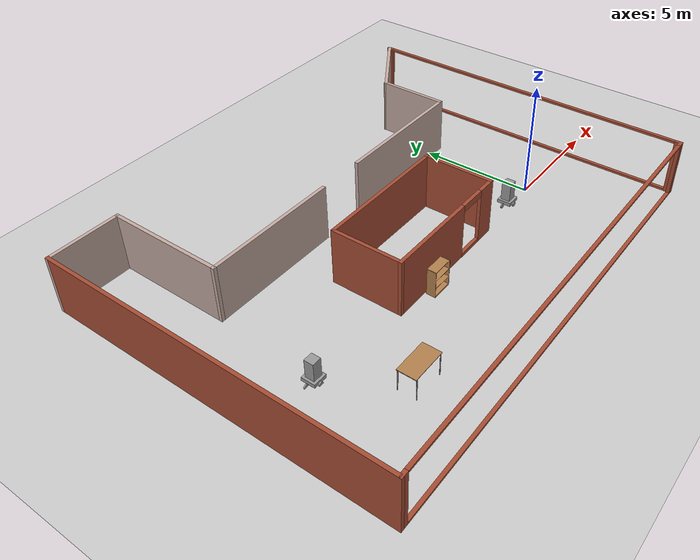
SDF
<sdf version="1.6">
 <world name="default">
  <light name="sun" type="directional">
   <pose>0 0 10 0 -0 0</pose>
   <diffuse>0.8 0.8 0.8 1</diffuse>
   <specular>0.2 0.2 0.2 1</specular>
   <attenuation>
    <range>1000</range>
    <constant>0.9</constant>
    <linear>0.01</linear>
    <quadratic>0.001</quadratic>
   </attenuation>
   <direction>-0.5 0.1 -0.9</direction>
  </light>
  <model name="ground_plane">
   <static>1</static>
   <link name="link">
    <collision name="collision">
     <geometry><plane><normal>0 0 1</normal><size>100 100</size></plane></geometry>
     <surface>
      <contact><collide_bitmask>65535</collide_bitmask></contact>
      <friction><ode><mu>100</mu><mu2>50</mu2></ode></friction>
     </surface>
    </collision>
    <visual name="visual">
     <cast_shadows>0</cast_shadows>
     <geometry><plane><normal>0 0 1</normal><size>100 100</size></plane></geometry>
     <material>
      <script><uri>file://media/materials/scripts/gazebo.material</uri><name>Gazebo/Grey</name></script>
     </material>
    </visual>
   </link>
  </model>
  <gravity>0 0 -9.8</gravity>
  <magnetic_field>6e-06 2.3e-05 -4.2e-05</magnetic_field>
  <atmosphere type="adiabatic"/>
  <physics name="default_physics" default="0" type="ode">
   <max_step_size>0.001</max_step_size>
   <real_time_factor>1</real_time_factor>
   <real_time_update_rate>1000</real_time_update_rate>
  </physics>
  <scene><ambient>0.4 0.4 0.4 1</ambient><background>0.7 0.7 0.7 1</background><shadows>1</shadows></scene>
  <spherical_coordinates>
   <surface_model>EARTH_WGS84</surface_model>
   <latitude_deg>0</latitude_deg>
   <longitude_deg>0</longitude_deg>
   <elevation>0</elevation>
   <heading_deg>0</heading_deg>
  </spherical_coordinates>
  <model name="CoffeeBot">
   <link name="link_0">
    <pose>0.405763 -0.037091 0.1 0 -0 0</pose>
    <inertial>
     <mass>1</mass>
     <inertia>
      <ixx>0.166667</ixx>
      <ixy>0</ixy>
      <ixz>0</ixz>
      <iyy>0.166667</iyy>
      <iyz>0</iyz>
      <izz>0.166667</izz>
     </inertia>
    </inertial>
    <visual name="visual">
     <geometry><box><size>0.6 0.6 0.16</size></box></geometry>
     <material>
      <lighting>1</lighting>
      <script><uri>file://media/materials/scripts/gazebo.material</uri><name>Gazebo/Grey</name></script>
      <shader type="pixel"><normal_map>__default__</normal_map></shader>
      <ambient>0.3 0.3 0.3 1</ambient>
      <diffuse>0.7 0.7 0.7 1</diffuse>
      <specular>0.01 0.01 0.01 1</specular>
      <emissive>0 0 0 1</emissive>
     </material>
    </visual>
    <collision name="collision">
     <geometry><box><size>0.6 0.6 0.16</size></box></geometry>
     <surface>
      <friction>
       <ode><mu>1</mu><mu2>1</mu2><fdir1>0 0 0</fdir1><slip1>0</slip1><slip2>0</slip2></ode>
       <torsional>
        <coefficient>1</coefficient>
        <patch_radius>0</patch_radius>
        <surface_radius>0</surface_radius>
        <use_patch_radius>1</use_patch_radius>
        <ode><slip>0</slip></ode>
       </torsional>
      </friction>
      <bounce><restitution_coefficient>0</restitution_coefficient><threshold>1e+06</threshold></bounce>
      <contact>
       <collide_without_contact>0</collide_without_contact>
       <collide_without_contact_bitmask>1</collide_without_contact_bitmask>
       <collide_bitmask>1</collide_bitmask>
       <ode>
        <soft_cfm>0</soft_cfm>
        <soft_erp>0.2</soft_erp>
        <kp>1e+13</kp>
        <kd>1</kd>
        <max_vel>0.01</max_vel>
        <min_depth>0</min_depth>
       </ode>
       <bullet>
        <split_impulse>1</split_impulse>
        <split_impulse_penetration_threshold>-0.01</split_impulse_penetration_threshold>
        <soft_cfm>0</soft_cfm>
        <soft_erp>0.2</soft_erp>
        <kp>1e+13</kp>
        <kd>1</kd>
       </bullet>
      </contact>
     </surface>
    </collision>
   </link>
   <link name="link_2">
    <pose>0.385763 -0.362104 0 1.5707 -0 0</pose>
    <inertial>
     <mass>1</mass>
     <inertia><ixx>0.145833</ixx><ixy>0</ixy><ixz>0</ixz><iyy>0.145833</iyy><iyz>0</iyz><izz>0.125</izz></inertia>
    </inertial>
    <visual name="visual">
     <geometry><cylinder><radius>0.1</radius><length>0.05</length></cylinder></geometry>
     <material>
      <lighting>1</lighting>
      <script><uri>file://media/materials/scripts/gazebo.material</uri><name>Gazebo/Grey</name></script>
      <shader type="pixel"><normal_map>__default__</normal_map></shader>
      <ambient>0.3 0.3 0.3 1</ambient>
      <diffuse>0.7 0.7 0.7 1</diffuse>
      <specular>0.01 0.01 0.01 1</specular>
      <emissive>0 0 0 1</emissive>
     </material>
    </visual>
    <collision name="collision">
     <geometry><cylinder><radius>0.1</radius><length>0.05</length></cylinder></geometry>
     <surface>
      <friction>
       <ode><mu>1</mu><mu2>1</mu2><fdir1>0 0 0</fdir1><slip1>0</slip1><slip2>0</slip2></ode>
       <torsional>
        <coefficient>1</coefficient>
        <patch_radius>0</patch_radius>
        <surface_radius>0</surface_radius>
        <use_patch_radius>1</use_patch_radius>
        <ode><slip>0</slip></ode>
       </torsional>
      </friction>
      <bounce><restitution_coefficient>0</restitution_coefficient><threshold>1e+06</threshold></bounce>
      <contact>
       <collide_without_contact>0</collide_without_contact>
       <collide_without_contact_bitmask>1</collide_without_contact_bitmask>
       <collide_bitmask>1</collide_bitmask>
       <ode>
        <soft_cfm>0</soft_cfm>
        <soft_erp>0.2</soft_erp>
        <kp>1e+13</kp>
        <kd>1</kd>
        <max_vel>0.01</max_vel>
        <min_depth>0</min_depth>
       </ode>
       <bullet>
        <split_impulse>1</split_impulse>
        <split_impulse_penetration_threshold>-0.01</split_impulse_penetration_threshold>
        <soft_cfm>0</soft_cfm>
        <soft_erp>0.2</soft_erp>
        <kp>1e+13</kp>
        <kd>1</kd>
       </bullet>
      </contact>
     </surface>
    </collision>
   </link>
   <link name="link_2_clone">
    <pose>0.405763 0.287919 0 1.5707 -0 0</pose>
    <inertial>
     <mass>1</mass>
     <inertia><ixx>0.145833</ixx><ixy>0</ixy><ixz>0</ixz><iyy>0.145833</iyy><iyz>0</iyz><izz>0.125</izz></inertia>
    </inertial>
    <visual name="visual">
     <geometry><cylinder><radius>0.1</radius><length>0.05</length></cylinder></geometry>
     <material>
      <lighting>1</lighting>
      <script><uri>file://media/materials/scripts/gazebo.material</uri><name>Gazebo/Grey</name></script>
      <shader type="pixel"><normal_map>__default__</normal_map></shader>
      <ambient>0.3 0.3 0.3 1</ambient>
      <diffuse>0.7 0.7 0.7 1</diffuse>
      <specular>0.01 0.01 0.01 1</specular>
      <emissive>0 0 0 1</emissive>
     </material>
    </visual>
    <collision name="collision">
     <geometry><cylinder><radius>0.1</radius><length>0.05</length></cylinder></geometry>
     <surface>
      <friction>
       <ode><mu>1</mu><mu2>1</mu2><fdir1>0 0 0</fdir1><slip1>0</slip1><slip2>0</slip2></ode>
       <torsional>
        <coefficient>1</coefficient>
        <patch_radius>0</patch_radius>
        <surface_radius>0</surface_radius>
        <use_patch_radius>1</use_patch_radius>
        <ode><slip>0</slip></ode>
       </torsional>
      </friction>
      <bounce><restitution_coefficient>0</restitution_coefficient><threshold>1e+06</threshold></bounce>
      <contact>
       <collide_without_contact>0</collide_without_contact>
       <collide_without_contact_bitmask>1</collide_without_contact_bitmask>
       <collide_bitmask>1</collide_bitmask>
       <ode>
        <soft_cfm>0</soft_cfm>
        <soft_erp>0.2</soft_erp>
        <kp>1e+13</kp>
        <kd>1</kd>
        <max_vel>0.01</max_vel>
        <min_depth>0</min_depth>
       </ode>
       <bullet>
        <split_impulse>1</split_impulse>
        <split_impulse_penetration_threshold>-0.01</split_impulse_penetration_threshold>
        <soft_cfm>0</soft_cfm>
        <soft_erp>0.2</soft_erp>
        <kp>1e+13</kp>
        <kd>1</kd>
       </bullet>
      </contact>
     </surface>
    </collision>
   </link>
   <link name="link_2_clone_0">
    <pose>0.005759 -0.037091 0 1.5707 -0 0</pose>
    <inertial>
     <mass>1</mass>
     <inertia><ixx>0.145833</ixx><ixy>0</ixy><ixz>0</ixz><iyy>0.145833</iyy><iyz>0</iyz><izz>0.125</izz></inertia>
    </inertial>
    <visual name="visual">
     <geometry><cylinder><radius>0.1</radius><length>0.05</length></cylinder></geometry>
     <material>
      <lighting>1</lighting>
      <script><uri>file://media/materials/scripts/gazebo.material</uri><name>Gazebo/Grey</name></script>
      <shader type="pixel"><normal_map>__default__</normal_map></shader>
      <ambient>0.3 0.3 0.3 1</ambient>
      <diffuse>0.7 0.7 0.7 1</diffuse>
      <specular>0.01 0.01 0.01 1</specular>
      <emissive>0 0 0 1</emissive>
     </material>
    </visual>
    <collision name="collision">
     <geometry><cylinder><radius>0.1</radius><length>0.05</length></cylinder></geometry>
     <surface>
      <friction>
       <ode><mu>1</mu><mu2>1</mu2><fdir1>0 0 0</fdir1><slip1>0</slip1><slip2>0</slip2></ode>
       <torsional>
        <coefficient>1</coefficient>
        <patch_radius>0</patch_radius>
        <surface_radius>0</surface_radius>
        <use_patch_radius>1</use_patch_radius>
        <ode><slip>0</slip></ode>
       </torsional>
      </friction>
      <bounce><restitution_coefficient>0</restitution_coefficient><threshold>1e+06</threshold></bounce>
      <contact>
       <collide_without_contact>0</collide_without_contact>
       <collide_without_contact_bitmask>1</collide_without_contact_bitmask>
       <collide_bitmask>1</collide_bitmask>
       <ode>
        <soft_cfm>0</soft_cfm>
        <soft_erp>0.2</soft_erp>
        <kp>1e+13</kp>
        <kd>1</kd>
        <max_vel>0.01</max_vel>
        <min_depth>0</min_depth>
       </ode>
       <bullet>
        <split_impulse>1</split_impulse>
        <split_impulse_penetration_threshold>-0.01</split_impulse_penetration_threshold>
        <soft_cfm>0</soft_cfm>
        <soft_erp>0.2</soft_erp>
        <kp>1e+13</kp>
        <kd>1</kd>
       </bullet>
      </contact>
     </surface>
    </collision>
   </link>
   <link name="link_3">
    <pose>0.405763 -0.037091 0.58 0 -0 0</pose>
    <inertial>
     <mass>1</mass>
     <inertia>
      <ixx>0.166667</ixx>
      <ixy>0</ixy>
      <ixz>0</ixz>
      <iyy>0.166667</iyy>
      <iyz>0</iyz>
      <izz>0.166667</izz>
     </inertia>
    </inertial>
    <visual name="visual">
     <geometry><box><size>0.4 0.4 0.8</size></box></geometry>
     <material>
      <lighting>1</lighting>
      <script><uri>file://media/materials/scripts/gazebo.material</uri><name>Gazebo/Grey</name></script>
      <shader type="pixel"><normal_map>__default__</normal_map></shader>
      <ambient>0.3 0.3 0.3 1</ambient>
      <diffuse>0.7 0.7 0.7 1</diffuse>
      <specular>0.01 0.01 0.01 1</specular>
      <emissive>0 0 0 1</emissive>
     </material>
    </visual>
    <collision name="collision">
     <geometry><box><size>0.4 0.4 0.8</size></box></geometry>
     <surface>
      <friction>
       <ode><mu>1</mu><mu2>1</mu2><fdir1>0 0 0</fdir1><slip1>0</slip1><slip2>0</slip2></ode>
       <torsional>
        <coefficient>1</coefficient>
        <patch_radius>0</patch_radius>
        <surface_radius>0</surface_radius>
        <use_patch_radius>1</use_patch_radius>
        <ode><slip>0</slip></ode>
       </torsional>
      </friction>
      <bounce><restitution_coefficient>0</restitution_coefficient><threshold>1e+06</threshold></bounce>
      <contact>
       <collide_without_contact>0</collide_without_contact>
       <collide_without_contact_bitmask>1</collide_without_contact_bitmask>
       <collide_bitmask>1</collide_bitmask>
       <ode>
        <soft_cfm>0</soft_cfm>
        <soft_erp>0.2</soft_erp>
        <kp>1e+13</kp>
        <kd>1</kd>
        <max_vel>0.01</max_vel>
        <min_depth>0</min_depth>
       </ode>
       <bullet>
        <split_impulse>1</split_impulse>
        <split_impulse_penetration_threshold>-0.01</split_impulse_penetration_threshold>
        <soft_cfm>0</soft_cfm>
        <soft_erp>0.2</soft_erp>
        <kp>1e+13</kp>
        <kd>1</kd>
       </bullet>
      </contact>
     </surface>
    </collision>
   </link>
   <joint name="link_0_JOINT_0" type="fixed">
    <parent>link_0</parent>
    <child>link_3</child>
    <physics>
     <ode><limit><cfm>0</cfm><erp>0.2</erp></limit><suspension><cfm>0</cfm><erp>0.2</erp></suspension></ode>
    </physics>
   </joint>
   <joint name="link_0_JOINT_1" type="revolute">
    <parent>link_0</parent>
    <child>link_2_clone</child>
    <axis>
     <xyz>0 0 1</xyz>
     <use_parent_model_frame>0</use_parent_model_frame>
     <limit>
      <lower>-1.79769e+308</lower>
      <upper>1.79769e+308</upper>
      <effort>-1</effort>
      <velocity>-1</velocity>
     </limit>
     <dynamics>
      <spring_reference>0</spring_reference>
      <spring_stiffness>0</spring_stiffness>
      <damping>0</damping>
     </dynamics>
    </axis>
    <physics>
     <ode><limit><cfm>0</cfm><erp>0.2</erp></limit><suspension><cfm>0</cfm><erp>0.2</erp></suspension></ode>
    </physics>
   </joint>
   <joint name="link_0_JOINT_2" type="revolute">
    <parent>link_0</parent>
    <child>link_2</child>
    <axis>
     <xyz>0 0 1</xyz>
     <use_parent_model_frame>0</use_parent_model_frame>
     <limit>
      <lower>-1.79769e+308</lower>
      <upper>1.79769e+308</upper>
      <effort>-1</effort>
      <velocity>-1</velocity>
     </limit>
     <dynamics>
      <spring_reference>0</spring_reference>
      <spring_stiffness>0</spring_stiffness>
      <damping>0</damping>
     </dynamics>
    </axis>
    <physics>
     <ode><limit><cfm>0</cfm><erp>0.2</erp></limit><suspension><cfm>0</cfm><erp>0.2</erp></suspension></ode>
    </physics>
   </joint>
   <joint name="link_0_JOINT_3" type="revolute">
    <parent>link_0</parent>
    <child>link_2_clone_0</child>
    <axis>
     <xyz>0 0 1</xyz>
     <use_parent_model_frame>0</use_parent_model_frame>
     <limit>
      <lower>-1.79769e+308</lower>
      <upper>1.79769e+308</upper>
      <effort>-1</effort>
      <velocity>-1</velocity>
     </limit>
     <dynamics>
      <spring_reference>0</spring_reference>
      <spring_stiffness>0</spring_stiffness>
      <damping>0</damping>
      <friction>0</friction>
     </dynamics>
    </axis>
    <physics>
     <ode><limit><cfm>0</cfm><erp>0.2</erp></limit><suspension><cfm>0</cfm><erp>0.2</erp></suspension></ode>
    </physics>
   </joint>
   <static>0</static>
   <pose>-2.16454 -0.02676 0.5 0 -0 0</pose>
  </model>
  <model name="FinanceFloor">
   <pose>-6.39478 2.42292 0 0 -0 0</pose>
   <link name="Wall_0">
    <collision name="Wall_0_Collision">
     <geometry><box><size>15.15 0.15 2.5</size></box></geometry>
     <pose>0 0 1.25 0 -0 0</pose>
    </collision>
    <visual name="Wall_0_Visual">
     <pose>0 0 1.25 0 -0 0</pose>
     <geometry><box><size>15.15 0.15 2.5</size></box></geometry>
     <material>
      <script><uri>file://media/materials/scripts/gazebo.material</uri><name>Gazebo/Bricks</name></script>
      <ambient>0.760784 0.662745 0.627451 1</ambient>
     </material>
     <meta><layer>0</layer></meta>
    </visual>
    <pose>-10.0145 -0.014503 0 0 0 -1.5708</pose>
   </link>
   <link name="Wall_1">
    <pose>-0.014503 -7.5145 0 0 -0 0</pose>
    <visual name="Wall_1_Visual_0">
     <pose>-9.9125 0 1.25 0 -0 0</pose>
     <geometry><box><size>0.325 0.15 2.5</size></box></geometry>
     <material>
      <script><uri>file://media/materials/scripts/gazebo.material</uri><name>Gazebo/Bricks</name></script>
      <ambient>0.760784 0.662745 0.627451 1</ambient>
     </material>
     <meta><layer>0</layer></meta>
    </visual>
    <collision name="Wall_1_Collision_0">
     <geometry><box><size>0.325 0.15 2.5</size></box></geometry>
     <pose>-9.9125 0 1.25 0 -0 0</pose>
    </collision>
    <visual name="Wall_1_Visual_1">
     <pose>0.1625 0 0.05 0 -0 0</pose>
     <geometry><box><size>19.825 0.15 0.1</size></box></geometry>
     <material>
      <script><uri>file://media/materials/scripts/gazebo.material</uri><name>Gazebo/Bricks</name></script>
      <ambient>0.760784 0.662745 0.627451 1</ambient>
     </material>
     <meta><layer>0</layer></meta>
    </visual>
    <collision name="Wall_1_Collision_1">
     <geometry><box><size>19.825 0.15 0.1</size></box></geometry>
     <pose>0.1625 0 0.05 0 -0 0</pose>
    </collision>
    <visual name="Wall_1_Visual_2">
     <pose>9.9125 0 1.3 0 -0 0</pose>
     <geometry><box><size>0.325 0.15 2.4</size></box></geometry>
     <material>
      <script><uri>file://media/materials/scripts/gazebo.material</uri><name>Gazebo/Bricks</name></script>
      <ambient>0.760784 0.662745 0.627451 1</ambient>
     </material>
     <meta><layer>0</layer></meta>
    </visual>
    <collision name="Wall_1_Collision_2">
     <geometry><box><size>0.325 0.15 2.4</size></box></geometry>
     <pose>9.9125 0 1.3 0 -0 0</pose>
    </collision>
    <visual name="Wall_1_Visual_3">
     <pose>0 0 2.45 0 -0 0</pose>
     <geometry><box><size>19.5 0.15 0.1</size></box></geometry>
     <material>
      <script><uri>file://media/materials/scripts/gazebo.material</uri><name>Gazebo/Bricks</name></script>
      <ambient>0.760784 0.662745 0.627451 1</ambient>
     </material>
     <meta><layer>0</layer></meta>
    </visual>
    <collision name="Wall_1_Collision_3">
     <geometry><box><size>19.5 0.15 0.1</size></box></geometry>
     <pose>0 0 2.45 0 -0 0</pose>
    </collision>
   </link>
   <link name="Wall_10">
    <collision name="Wall_10_Collision">
     <geometry><box><size>3.15 0.15 2.5</size></box></geometry>
     <pose>0 0 1.25 0 -0 0</pose>
    </collision>
    <visual name="Wall_10_Visual">
     <pose>0 0 1.25 0 -0 0</pose>
     <geometry><box><size>3.15 0.15 2.5</size></box></geometry>
     <material>
      <script><uri>file://media/materials/scripts/gazebo.material</uri><name>Gazebo/Bricks</name></script>
      <ambient>0.760784 0.662745 0.627451 1</ambient>
     </material>
     <meta><layer>0</layer></meta>
    </visual>
    <pose>2.9855 -1.0145 0 0 0 -1.5708</pose>
   </link>
   <link name="Wall_11">
    <pose>-0.014503 -2.5145 0 0 -0 3.14159</pose>
    <visual name="Wall_11_Visual_0">
     <pose>-2.63694 0 1.25 0 -0 0</pose>
     <geometry><box><size>0.876118 0.15 2.5</size></box></geometry>
     <material>
      <script><uri>file://media/materials/scripts/gazebo.material</uri><name>Gazebo/Bricks</name></script>
      <ambient>0.760784 0.662745 0.627451 1</ambient>
     </material>
     <meta><layer>0</layer></meta>
    </visual>
    <collision name="Wall_11_Collision_0">
     <geometry><box><size>0.876118 0.15 2.5</size></box></geometry>
     <pose>-2.63694 0 1.25 0 -0 0</pose>
    </collision>
    <visual name="Wall_11_Visual_1">
     <pose>1.03806 0 1.25 0 -0 0</pose>
     <geometry><box><size>4.07388 0.15 2.5</size></box></geometry>
     <material>
      <script><uri>file://media/materials/scripts/gazebo.material</uri><name>Gazebo/Bricks</name></script>
      <ambient>0.760784 0.662745 0.627451 1</ambient>
     </material>
     <meta><layer>0</layer></meta>
    </visual>
    <collision name="Wall_11_Collision_1">
     <geometry><box><size>4.07388 0.15 2.5</size></box></geometry>
     <pose>1.03806 0 1.25 0 -0 0</pose>
    </collision>
    <visual name="Wall_11_Visual_2">
     <pose>-1.59888 0 0 0 -0 0</pose>
     <geometry><box><size>1.2 0.15 0.3</size></box></geometry>
     <material>
      <script><uri>file://media/materials/scripts/gazebo.material</uri><name>Gazebo/Bricks</name></script>
      <ambient>0.760784 0.662745 0.627451 1</ambient>
     </material>
     <meta><layer>0</layer></meta>
    </visual>
    <collision name="Wall_11_Collision_2">
     <geometry><box><size>1.2 0.15 0.3</size></box></geometry>
     <pose>-1.59888 0 0 0 -0 0</pose>
    </collision>
    <visual name="Wall_11_Visual_3">
     <pose>-1.59888 0 2.35 0 -0 0</pose>
     <geometry><box><size>1.2 0.15 0.3</size></box></geometry>
     <material>
      <script><uri>file://media/materials/scripts/gazebo.material</uri><name>Gazebo/Bricks</name></script>
      <ambient>0.760784 0.662745 0.627451 1</ambient>
     </material>
     <meta><layer>0</layer></meta>
    </visual>
    <collision name="Wall_11_Collision_3">
     <geometry><box><size>1.2 0.15 0.3</size></box></geometry>
     <pose>-1.59888 0 2.35 0 -0 0</pose>
    </collision>
   </link>
   <link name="Wall_12">
    <collision name="Wall_12_Collision">
     <geometry><box><size>3.15 0.15 2.5</size></box></geometry>
     <pose>0 0 1.25 0 -0 0</pose>
    </collision>
    <visual name="Wall_12_Visual">
     <pose>0 0 1.25 0 -0 0</pose>
     <geometry><box><size>3.15 0.15 2.5</size></box></geometry>
     <material>
      <script><uri>file://media/materials/scripts/gazebo.material</uri><name>Gazebo/Bricks</name></script>
      <ambient>0.760784 0.662745 0.627451 1</ambient>
     </material>
     <meta><layer>0</layer></meta>
    </visual>
    <pose>-3.0145 -1.0145 0 0 -0 1.5708</pose>
   </link>
   <link name="Wall_2">
    <pose>9.9855 -0.014503 0 0 -0 1.5708</pose>
    <visual name="Wall_2_Visual_0">
     <pose>-7.4125 0 1.25 0 -0 0</pose>
     <geometry><box><size>0.325 0.15 2.5</size></box></geometry>
     <material>
      <script><uri>file://media/materials/scripts/gazebo.material</uri><name>Gazebo/Bricks</name></script>
      <ambient>0.760784 0.662745 0.627451 1</ambient>
     </material>
     <meta><layer>0</layer></meta>
    </visual>
    <collision name="Wall_2_Collision_0">
     <geometry><box><size>0.325 0.15 2.5</size></box></geometry>
     <pose>-7.4125 0 1.25 0 -0 0</pose>
    </collision>
    <visual name="Wall_2_Visual_1">
     <pose>0.1625 0 0.05 0 -0 0</pose>
     <geometry><box><size>14.825 0.15 0.1</size></box></geometry>
     <material>
      <script><uri>file://media/materials/scripts/gazebo.material</uri><name>Gazebo/Bricks</name></script>
      <ambient>0.760784 0.662745 0.627451 1</ambient>
     </material>
     <meta><layer>0</layer></meta>
    </visual>
    <collision name="Wall_2_Collision_1">
     <geometry><box><size>14.825 0.15 0.1</size></box></geometry>
     <pose>0.1625 0 0.05 0 -0 0</pose>
    </collision>
    <visual name="Wall_2_Visual_2">
     <pose>7.4125 0 1.3 0 -0 0</pose>
     <geometry><box><size>0.325 0.15 2.4</size></box></geometry>
     <material>
      <script><uri>file://media/materials/scripts/gazebo.material</uri><name>Gazebo/Bricks</name></script>
      <ambient>0.760784 0.662745 0.627451 1</ambient>
     </material>
     <meta><layer>0</layer></meta>
    </visual>
    <collision name="Wall_2_Collision_2">
     <geometry><box><size>0.325 0.15 2.4</size></box></geometry>
     <pose>7.4125 0 1.3 0 -0 0</pose>
    </collision>
    <visual name="Wall_2_Visual_3">
     <pose>0 0 2.45 0 -0 0</pose>
     <geometry><box><size>14.5 0.15 0.1</size></box></geometry>
     <material>
      <script><uri>file://media/materials/scripts/gazebo.material</uri><name>Gazebo/Bricks</name></script>
      <ambient>0.760784 0.662745 0.627451 1</ambient>
     </material>
     <meta><layer>0</layer></meta>
    </visual>
    <collision name="Wall_2_Collision_3">
     <geometry><box><size>14.5 0.15 0.1</size></box></geometry>
     <pose>0 0 2.45 0 -0 0</pose>
    </collision>
   </link>
   <link name="Wall_3">
    <collision name="Wall_3_Collision">
     <geometry><box><size>3.75555 0.15 2.5</size></box></geometry>
     <pose>0 0 1.25 0 -0 0</pose>
    </collision>
    <visual name="Wall_3_Visual">
     <pose>0 0 1.25 0 -0 0</pose>
     <geometry><box><size>3.75555 0.15 2.5</size></box></geometry>
     <material>
      <script><uri>file://media/materials/scripts/gazebo.material</uri><name>Gazebo/Grey</name></script>
      <ambient>0.760784 0.662745 0.627451 1</ambient>
     </material>
     <meta><layer>0</layer></meta>
    </visual>
    <pose>8.4855 6.4855 0 0 0 -2.55359</pose>
   </link>
   <link name="Wall_4">
    <collision name="Wall_4_Collision">
     <geometry><box><size>3.15 0.15 2.5</size></box></geometry>
     <pose>0 0 1.25 0 -0 0</pose>
    </collision>
    <visual name="Wall_4_Visual">
     <pose>0 0 1.25 0 -0 0</pose>
     <geometry><box><size>3.15 0.15 2.5</size></box></geometry>
     <material>
      <script><uri>file://media/materials/scripts/gazebo.material</uri><name>Gazebo/Grey</name></script>
      <ambient>0.760784 0.662745 0.627451 1</ambient>
     </material>
     <meta><layer>0</layer></meta>
    </visual>
    <pose>6.9855 3.9855 0 0 0 -1.5708</pose>
   </link>
   <link name="Wall_5">
    <pose>-0.014503 2.4855 0 0 -0 3.14159</pose>
    <visual name="Wall_5_Visual_0">
     <pose>-3.98255 0 1.25 0 -0 0</pose>
     <geometry><box><size>6.1849 0.15 2.5</size></box></geometry>
     <material>
      <script><uri>file://media/materials/scripts/gazebo.material</uri><name>Gazebo/Grey</name></script>
      <ambient>0.760784 0.662745 0.627451 1</ambient>
     </material>
     <meta><layer>0</layer></meta>
    </visual>
    <collision name="Wall_5_Collision_0">
     <geometry><box><size>6.1849 0.15 2.5</size></box></geometry>
     <pose>-3.98255 0 1.25 0 -0 0</pose>
    </collision>
    <visual name="Wall_5_Visual_1">
     <pose>4.09245 0 1.25 0 -0 0</pose>
     <geometry><box><size>5.9651 0.15 2.5</size></box></geometry>
     <material>
      <script><uri>file://media/materials/scripts/gazebo.material</uri><name>Gazebo/Grey</name></script>
      <ambient>0.760784 0.662745 0.627451 1</ambient>
     </material>
     <meta><layer>0</layer></meta>
    </visual>
    <collision name="Wall_5_Collision_1">
     <geometry><box><size>5.9651 0.15 2.5</size></box></geometry>
     <pose>4.09245 0 1.25 0 -0 0</pose>
    </collision>
   </link>
   <link name="Wall_6">
    <collision name="Wall_6_Collision">
     <geometry><box><size>5.15 0.15 2.5</size></box></geometry>
     <pose>0 0 1.25 0 -0 0</pose>
    </collision>
    <visual name="Wall_6_Visual">
     <pose>0 0 1.25 0 -0 0</pose>
     <geometry><box><size>5.15 0.15 2.5</size></box></geometry>
     <material>
      <script><uri>file://media/materials/scripts/gazebo.material</uri><name>Gazebo/Grey</name></script>
      <ambient>0.760784 0.662745 0.627451 1</ambient>
     </material>
     <meta><layer>0</layer></meta>
    </visual>
    <pose>-7.0145 4.9855 0 0 -0 1.5708</pose>
   </link>
   <link name="Wall_7">
    <collision name="Wall_7_Collision">
     <geometry><box><size>3.15 0.15 2.5</size></box></geometry>
     <pose>0 0 1.25 0 -0 0</pose>
    </collision>
    <visual name="Wall_7_Visual">
     <pose>0 0 1.25 0 -0 0</pose>
     <geometry><box><size>3.15 0.15 2.5</size></box></geometry>
     <material>
      <script><uri>file://media/materials/scripts/gazebo.material</uri><name>Gazebo/Grey</name></script>
      <ambient>0.760784 0.662745 0.627451 1</ambient>
     </material>
     <meta><layer>0</layer></meta>
    </visual>
    <pose>-8.5145 7.4855 0 0 -0 3.14159</pose>
   </link>
   <link name="Wall_9">
    <collision name="Wall_9_Collision">
     <geometry><box><size>6.15 0.15 2.5</size></box></geometry>
     <pose>0 0 1.25 0 -0 0</pose>
    </collision>
    <visual name="Wall_9_Visual">
     <pose>0 0 1.25 0 -0 0</pose>
     <geometry><box><size>6.15 0.15 2.5</size></box></geometry>
     <material>
      <script><uri>file://media/materials/scripts/gazebo.material</uri><name>Gazebo/Bricks</name></script>
      <ambient>0.760784 0.662745 0.627451 1</ambient>
     </material>
     <meta><layer>0</layer></meta>
    </visual>
    <pose>-0.014503 0.485497 0 0 -0 0</pose>
   </link>
   <static>1</static>
  </model>
  <model name="CoffeeBot_0">
   <link name="link_0">
    <pose>0.405763 -0.037091 0.1 0 -0 0</pose>
    <inertial>
     <mass>1</mass>
     <inertia>
      <ixx>0.166667</ixx>
      <ixy>0</ixy>
      <ixz>0</ixz>
      <iyy>0.166667</iyy>
      <iyz>0</iyz>
      <izz>0.166667</izz>
     </inertia>
    </inertial>
    <visual name="visual">
     <geometry><box><size>0.6 0.6 0.16</size></box></geometry>
     <material>
      <lighting>1</lighting>
      <script><uri>file://media/materials/scripts/gazebo.material</uri><name>Gazebo/Grey</name></script>
      <shader type="pixel"><normal_map>__default__</normal_map></shader>
      <ambient>0.3 0.3 0.3 1</ambient>
      <diffuse>0.7 0.7 0.7 1</diffuse>
      <specular>0.01 0.01 0.01 1</specular>
      <emissive>0 0 0 1</emissive>
     </material>
    </visual>
    <collision name="collision">
     <geometry><box><size>0.6 0.6 0.16</size></box></geometry>
     <surface>
      <friction>
       <ode><mu>1</mu><mu2>1</mu2><fdir1>0 0 0</fdir1><slip1>0</slip1><slip2>0</slip2></ode>
       <torsional>
        <coefficient>1</coefficient>
        <patch_radius>0</patch_radius>
        <surface_radius>0</surface_radius>
        <use_patch_radius>1</use_patch_radius>
        <ode><slip>0</slip></ode>
       </torsional>
      </friction>
      <bounce><restitution_coefficient>0</restitution_coefficient><threshold>1e+06</threshold></bounce>
      <contact>
       <collide_without_contact>0</collide_without_contact>
       <collide_without_contact_bitmask>1</collide_without_contact_bitmask>
       <collide_bitmask>1</collide_bitmask>
       <ode>
        <soft_cfm>0</soft_cfm>
        <soft_erp>0.2</soft_erp>
        <kp>1e+13</kp>
        <kd>1</kd>
        <max_vel>0.01</max_vel>
        <min_depth>0</min_depth>
       </ode>
       <bullet>
        <split_impulse>1</split_impulse>
        <split_impulse_penetration_threshold>-0.01</split_impulse_penetration_threshold>
        <soft_cfm>0</soft_cfm>
        <soft_erp>0.2</soft_erp>
        <kp>1e+13</kp>
        <kd>1</kd>
       </bullet>
      </contact>
     </surface>
    </collision>
   </link>
   <link name="link_2">
    <pose>0.385763 -0.362104 0 1.5707 -0 0</pose>
    <inertial>
     <mass>1</mass>
     <inertia><ixx>0.145833</ixx><ixy>0</ixy><ixz>0</ixz><iyy>0.145833</iyy><iyz>0</iyz><izz>0.125</izz></inertia>
    </inertial>
    <visual name="visual">
     <geometry><cylinder><radius>0.1</radius><length>0.05</length></cylinder></geometry>
     <material>
      <lighting>1</lighting>
      <script><uri>file://media/materials/scripts/gazebo.material</uri><name>Gazebo/Grey</name></script>
      <shader type="pixel"><normal_map>__default__</normal_map></shader>
      <ambient>0.3 0.3 0.3 1</ambient>
      <diffuse>0.7 0.7 0.7 1</diffuse>
      <specular>0.01 0.01 0.01 1</specular>
      <emissive>0 0 0 1</emissive>
     </material>
    </visual>
    <collision name="collision">
     <geometry><cylinder><radius>0.1</radius><length>0.05</length></cylinder></geometry>
     <surface>
      <friction>
       <ode><mu>1</mu><mu2>1</mu2><fdir1>0 0 0</fdir1><slip1>0</slip1><slip2>0</slip2></ode>
       <torsional>
        <coefficient>1</coefficient>
        <patch_radius>0</patch_radius>
        <surface_radius>0</surface_radius>
        <use_patch_radius>1</use_patch_radius>
        <ode><slip>0</slip></ode>
       </torsional>
      </friction>
      <bounce><restitution_coefficient>0</restitution_coefficient><threshold>1e+06</threshold></bounce>
      <contact>
       <collide_without_contact>0</collide_without_contact>
       <collide_without_contact_bitmask>1</collide_without_contact_bitmask>
       <collide_bitmask>1</collide_bitmask>
       <ode>
        <soft_cfm>0</soft_cfm>
        <soft_erp>0.2</soft_erp>
        <kp>1e+13</kp>
        <kd>1</kd>
        <max_vel>0.01</max_vel>
        <min_depth>0</min_depth>
       </ode>
       <bullet>
        <split_impulse>1</split_impulse>
        <split_impulse_penetration_threshold>-0.01</split_impulse_penetration_threshold>
        <soft_cfm>0</soft_cfm>
        <soft_erp>0.2</soft_erp>
        <kp>1e+13</kp>
        <kd>1</kd>
       </bullet>
      </contact>
     </surface>
    </collision>
   </link>
   <link name="link_2_clone">
    <pose>0.405763 0.287919 0 1.5707 -0 0</pose>
    <inertial>
     <mass>1</mass>
     <inertia><ixx>0.145833</ixx><ixy>0</ixy><ixz>0</ixz><iyy>0.145833</iyy><iyz>0</iyz><izz>0.125</izz></inertia>
    </inertial>
    <visual name="visual">
     <geometry><cylinder><radius>0.1</radius><length>0.05</length></cylinder></geometry>
     <material>
      <lighting>1</lighting>
      <script><uri>file://media/materials/scripts/gazebo.material</uri><name>Gazebo/Grey</name></script>
      <shader type="pixel"><normal_map>__default__</normal_map></shader>
      <ambient>0.3 0.3 0.3 1</ambient>
      <diffuse>0.7 0.7 0.7 1</diffuse>
      <specular>0.01 0.01 0.01 1</specular>
      <emissive>0 0 0 1</emissive>
     </material>
    </visual>
    <collision name="collision">
     <geometry><cylinder><radius>0.1</radius><length>0.05</length></cylinder></geometry>
     <surface>
      <friction>
       <ode><mu>1</mu><mu2>1</mu2><fdir1>0 0 0</fdir1><slip1>0</slip1><slip2>0</slip2></ode>
       <torsional>
        <coefficient>1</coefficient>
        <patch_radius>0</patch_radius>
        <surface_radius>0</surface_radius>
        <use_patch_radius>1</use_patch_radius>
        <ode><slip>0</slip></ode>
       </torsional>
      </friction>
      <bounce><restitution_coefficient>0</restitution_coefficient><threshold>1e+06</threshold></bounce>
      <contact>
       <collide_without_contact>0</collide_without_contact>
       <collide_without_contact_bitmask>1</collide_without_contact_bitmask>
       <collide_bitmask>1</collide_bitmask>
       <ode>
        <soft_cfm>0</soft_cfm>
        <soft_erp>0.2</soft_erp>
        <kp>1e+13</kp>
        <kd>1</kd>
        <max_vel>0.01</max_vel>
        <min_depth>0</min_depth>
       </ode>
       <bullet>
        <split_impulse>1</split_impulse>
        <split_impulse_penetration_threshold>-0.01</split_impulse_penetration_threshold>
        <soft_cfm>0</soft_cfm>
        <soft_erp>0.2</soft_erp>
        <kp>1e+13</kp>
        <kd>1</kd>
       </bullet>
      </contact>
     </surface>
    </collision>
   </link>
   <link name="link_2_clone_0">
    <pose>0.005759 -0.037091 0 1.5707 -0 0</pose>
    <inertial>
     <mass>1</mass>
     <inertia><ixx>0.145833</ixx><ixy>0</ixy><ixz>0</ixz><iyy>0.145833</iyy><iyz>0</iyz><izz>0.125</izz></inertia>
    </inertial>
    <visual name="visual">
     <geometry><cylinder><radius>0.1</radius><length>0.05</length></cylinder></geometry>
     <material>
      <lighting>1</lighting>
      <script><uri>file://media/materials/scripts/gazebo.material</uri><name>Gazebo/Grey</name></script>
      <shader type="pixel"><normal_map>__default__</normal_map></shader>
      <ambient>0.3 0.3 0.3 1</ambient>
      <diffuse>0.7 0.7 0.7 1</diffuse>
      <specular>0.01 0.01 0.01 1</specular>
      <emissive>0 0 0 1</emissive>
     </material>
    </visual>
    <collision name="collision">
     <geometry><cylinder><radius>0.1</radius><length>0.05</length></cylinder></geometry>
     <surface>
      <friction>
       <ode><mu>1</mu><mu2>1</mu2><fdir1>0 0 0</fdir1><slip1>0</slip1><slip2>0</slip2></ode>
       <torsional>
        <coefficient>1</coefficient>
        <patch_radius>0</patch_radius>
        <surface_radius>0</surface_radius>
        <use_patch_radius>1</use_patch_radius>
        <ode><slip>0</slip></ode>
       </torsional>
      </friction>
      <bounce><restitution_coefficient>0</restitution_coefficient><threshold>1e+06</threshold></bounce>
      <contact>
       <collide_without_contact>0</collide_without_contact>
       <collide_without_contact_bitmask>1</collide_without_contact_bitmask>
       <collide_bitmask>1</collide_bitmask>
       <ode>
        <soft_cfm>0</soft_cfm>
        <soft_erp>0.2</soft_erp>
        <kp>1e+13</kp>
        <kd>1</kd>
        <max_vel>0.01</max_vel>
        <min_depth>0</min_depth>
       </ode>
       <bullet>
        <split_impulse>1</split_impulse>
        <split_impulse_penetration_threshold>-0.01</split_impulse_penetration_threshold>
        <soft_cfm>0</soft_cfm>
        <soft_erp>0.2</soft_erp>
        <kp>1e+13</kp>
        <kd>1</kd>
       </bullet>
      </contact>
     </surface>
    </collision>
   </link>
   <link name="link_3">
    <pose>0.405763 -0.037091 0.58 0 -0 0</pose>
    <inertial>
     <mass>1</mass>
     <inertia>
      <ixx>0.166667</ixx>
      <ixy>0</ixy>
      <ixz>0</ixz>
      <iyy>0.166667</iyy>
      <iyz>0</iyz>
      <izz>0.166667</izz>
     </inertia>
    </inertial>
    <visual name="visual">
     <geometry><box><size>0.4 0.4 0.8</size></box></geometry>
     <material>
      <lighting>1</lighting>
      <script><uri>file://media/materials/scripts/gazebo.material</uri><name>Gazebo/Grey</name></script>
      <shader type="pixel"><normal_map>__default__</normal_map></shader>
      <ambient>0.3 0.3 0.3 1</ambient>
      <diffuse>0.7 0.7 0.7 1</diffuse>
      <specular>0.01 0.01 0.01 1</specular>
      <emissive>0 0 0 1</emissive>
     </material>
    </visual>
    <collision name="collision">
     <geometry><box><size>0.4 0.4 0.8</size></box></geometry>
     <surface>
      <friction>
       <ode><mu>1</mu><mu2>1</mu2><fdir1>0 0 0</fdir1><slip1>0</slip1><slip2>0</slip2></ode>
       <torsional>
        <coefficient>1</coefficient>
        <patch_radius>0</patch_radius>
        <surface_radius>0</surface_radius>
        <use_patch_radius>1</use_patch_radius>
        <ode><slip>0</slip></ode>
       </torsional>
      </friction>
      <bounce><restitution_coefficient>0</restitution_coefficient><threshold>1e+06</threshold></bounce>
      <contact>
       <collide_without_contact>0</collide_without_contact>
       <collide_without_contact_bitmask>1</collide_without_contact_bitmask>
       <collide_bitmask>1</collide_bitmask>
       <ode>
        <soft_cfm>0</soft_cfm>
        <soft_erp>0.2</soft_erp>
        <kp>1e+13</kp>
        <kd>1</kd>
        <max_vel>0.01</max_vel>
        <min_depth>0</min_depth>
       </ode>
       <bullet>
        <split_impulse>1</split_impulse>
        <split_impulse_penetration_threshold>-0.01</split_impulse_penetration_threshold>
        <soft_cfm>0</soft_cfm>
        <soft_erp>0.2</soft_erp>
        <kp>1e+13</kp>
        <kd>1</kd>
       </bullet>
      </contact>
     </surface>
    </collision>
   </link>
   <joint name="link_0_JOINT_0" type="fixed">
    <parent>link_0</parent>
    <child>link_3</child>
    <physics>
     <ode><limit><cfm>0</cfm><erp>0.2</erp></limit><suspension><cfm>0</cfm><erp>0.2</erp></suspension></ode>
    </physics>
   </joint>
   <joint name="link_0_JOINT_1" type="revolute">
    <parent>link_0</parent>
    <child>link_2_clone</child>
    <axis>
     <xyz>0 0 1</xyz>
     <use_parent_model_frame>0</use_parent_model_frame>
     <limit>
      <lower>-1.79769e+308</lower>
      <upper>1.79769e+308</upper>
      <effort>-1</effort>
      <velocity>-1</velocity>
     </limit>
     <dynamics>
      <spring_reference>0</spring_reference>
      <spring_stiffness>0</spring_stiffness>
      <damping>0</damping>
     </dynamics>
    </axis>
    <physics>
     <ode><limit><cfm>0</cfm><erp>0.2</erp></limit><suspension><cfm>0</cfm><erp>0.2</erp></suspension></ode>
    </physics>
   </joint>
   <joint name="link_0_JOINT_2" type="revolute">
    <parent>link_0</parent>
    <child>link_2</child>
    <axis>
     <xyz>0 0 1</xyz>
     <use_parent_model_frame>0</use_parent_model_frame>
     <limit>
      <lower>-1.79769e+308</lower>
      <upper>1.79769e+308</upper>
      <effort>-1</effort>
      <velocity>-1</velocity>
     </limit>
     <dynamics>
      <spring_reference>0</spring_reference>
      <spring_stiffness>0</spring_stiffness>
      <damping>0</damping>
     </dynamics>
    </axis>
    <physics>
     <ode><limit><cfm>0</cfm><erp>0.2</erp></limit><suspension><cfm>0</cfm><erp>0.2</erp></suspension></ode>
    </physics>
   </joint>
   <joint name="link_0_JOINT_3" type="revolute">
    <parent>link_0</parent>
    <child>link_2_clone_0</child>
    <axis>
     <xyz>0 0 1</xyz>
     <use_parent_model_frame>0</use_parent_model_frame>
     <limit>
      <lower>-1.79769e+308</lower>
      <upper>1.79769e+308</upper>
      <effort>-1</effort>
      <velocity>-1</velocity>
     </limit>
     <dynamics>
      <spring_reference>0</spring_reference>
      <spring_stiffness>0</spring_stiffness>
      <damping>0</damping>
      <friction>0</friction>
     </dynamics>
    </axis>
    <physics>
     <ode><limit><cfm>0</cfm><erp>0.2</erp></limit><suspension><cfm>0</cfm><erp>0.2</erp></suspension></ode>
    </physics>
   </joint>
   <static>0</static>
   <pose>-14.0183 0.486087 0 0 -0 0</pose>
  </model>
  <model name="table">
   <static>1</static>
   <link name="link">
    <collision name="surface">
     <pose>0 0 1 0 -0 0</pose>
     <geometry><box><size>1.5 0.8 0.03</size></box></geometry>
     <surface><friction><ode><mu>0.6</mu><mu2>0.6</mu2></ode></friction></surface>
    </collision>
    <visual name="visual1">
     <pose>0 0 1 0 -0 0</pose>
     <geometry><box><size>1.5 0.8 0.03</size></box></geometry>
     <material>
      <script><uri>file://media/materials/scripts/gazebo.material</uri><name>Gazebo/Wood</name></script>
     </material>
    </visual>
    <collision name="front_left_leg">
     <pose>0.68 0.38 0.5 0 -0 0</pose>
     <geometry><cylinder><radius>0.02</radius><length>1</length></cylinder></geometry>
    </collision>
    <visual name="front_left_leg">
     <pose>0.68 0.38 0.5 0 -0 0</pose>
     <geometry><cylinder><radius>0.02</radius><length>1</length></cylinder></geometry>
     <material>
      <script><uri>file://media/materials/scripts/gazebo.material</uri><name>Gazebo/Grey</name></script>
     </material>
    </visual>
    <collision name="front_right_leg">
     <pose>0.68 -0.38 0.5 0 -0 0</pose>
     <geometry><cylinder><radius>0.02</radius><length>1</length></cylinder></geometry>
    </collision>
    <visual name="front_right_leg">
     <pose>0.68 -0.38 0.5 0 -0 0</pose>
     <geometry><cylinder><radius>0.02</radius><length>1</length></cylinder></geometry>
     <material>
      <script><uri>file://media/materials/scripts/gazebo.material</uri><name>Gazebo/Grey</name></script>
     </material>
    </visual>
    <collision name="back_right_leg">
     <pose>-0.68 -0.38 0.5 0 -0 0</pose>
     <geometry><cylinder><radius>0.02</radius><length>1</length></cylinder></geometry>
    </collision>
    <visual name="back_right_leg">
     <pose>-0.68 -0.38 0.5 0 -0 0</pose>
     <geometry><cylinder><radius>0.02</radius><length>1</length></cylinder></geometry>
     <material>
      <script><uri>file://media/materials/scripts/gazebo.material</uri><name>Gazebo/Grey</name></script>
     </material>
    </visual>
    <collision name="back_left_leg">
     <pose>-0.68 0.38 0.5 0 -0 0</pose>
     <geometry><cylinder><radius>0.02</radius><length>1</length></cylinder></geometry>
    </collision>
    <visual name="back_left_leg">
     <pose>-0.68 0.38 0.5 0 -0 0</pose>
     <geometry><cylinder><radius>0.02</radius><length>1</length></cylinder></geometry>
     <material>
      <script><uri>file://media/materials/scripts/gazebo.material</uri><name>Gazebo/Grey</name></script>
     </material>
    </visual>
   </link>
   <pose>-11.6537 -2.43566 0 0 -0 0</pose>
  </model>
  <model name="bookshelf">
   <static>1</static>
   <link name="link">
    <inertial><mass>1</mass></inertial>
    <collision name="back">
     <pose>0 0.005 0.6 0 -0 0</pose>
     <geometry><box><size>0.9 0.01 1.2</size></box></geometry>
    </collision>
    <visual name="visual1">
     <pose>0 0.005 0.6 0 -0 0</pose>
     <geometry><box><size>0.9 0.01 1.2</size></box></geometry>
     <material>
      <script><uri>file://media/materials/scripts/gazebo.material</uri><name>Gazebo/Wood</name></script>
     </material>
    </visual>
    <collision name="left_side">
     <pose>0.45 -0.195 0.6 0 -0 0</pose>
     <geometry><box><size>0.02 0.4 1.2</size></box></geometry>
    </collision>
    <visual name="visual2">
     <pose>0.45 -0.195 0.6 0 -0 0</pose>
     <geometry><box><size>0.02 0.4 1.2</size></box></geometry>
     <material>
      <script><uri>file://media/materials/scripts/gazebo.material</uri><name>Gazebo/Wood</name></script>
     </material>
    </visual>
    <collision name="right_side">
     <pose>-0.45 -0.195 0.6 0 -0 0</pose>
     <geometry><box><size>0.02 0.4 1.2</size></box></geometry>
    </collision>
    <visual name="visual3">
     <pose>-0.45 -0.195 0.6 0 -0 0</pose>
     <geometry><box><size>0.02 0.4 1.2</size></box></geometry>
     <material>
      <script><uri>file://media/materials/scripts/gazebo.material</uri><name>Gazebo/Wood</name></script>
     </material>
    </visual>
    <collision name="bottom">
     <pose>0 -0.195 0.03 0 -0 0</pose>
     <geometry><box><size>0.88 0.4 0.06</size></box></geometry>
    </collision>
    <visual name="visual4">
     <pose>0 -0.195 0.03 0 -0 0</pose>
     <geometry><box><size>0.88 0.4 0.06</size></box></geometry>
     <material>
      <script><uri>file://media/materials/scripts/gazebo.material</uri><name>Gazebo/Wood</name></script>
     </material>
    </visual>
    <collision name="top">
     <pose>0 -0.195 1.19 0 -0 0</pose>
     <geometry><box><size>0.88 0.4 0.02</size></box></geometry>
    </collision>
    <visual name="visual5">
     <pose>0 -0.195 1.19 0 -0 0</pose>
     <geometry><box><size>0.88 0.4 0.02</size></box></geometry>
     <material>
      <script><uri>file://media/materials/scripts/gazebo.material</uri><name>Gazebo/Wood</name></script>
     </material>
    </visual>
    <collision name="low_shelf">
     <pose>0 -0.195 0.43 0 -0 0</pose>
     <geometry><box><size>0.88 0.4 0.02</size></box></geometry>
    </collision>
    <visual name="visual6">
     <pose>0 -0.195 0.43 0 -0 0</pose>
     <geometry><box><size>0.88 0.4 0.02</size></box></geometry>
     <material>
      <script><uri>file://media/materials/scripts/gazebo.material</uri><name>Gazebo/Wood</name></script>
     </material>
    </visual>
    <collision name="high_shelf">
     <pose>0 -0.195 0.8 0 -0 0</pose>
     <geometry><box><size>0.88 0.4 0.02</size></box></geometry>
    </collision>
    <visual name="visual7">
     <pose>0 -0.195 0.8 0 -0 0</pose>
     <geometry><box><size>0.88 0.4 0.02</size></box></geometry>
     <material>
      <script><uri>file://media/materials/scripts/gazebo.material</uri><name>Gazebo/Wood</name></script>
     </material>
    </visual>
   </link>
   <pose>-7.50273 -0.228859 0 0 -0 0</pose>
  </model>
 </world>
</sdf>
